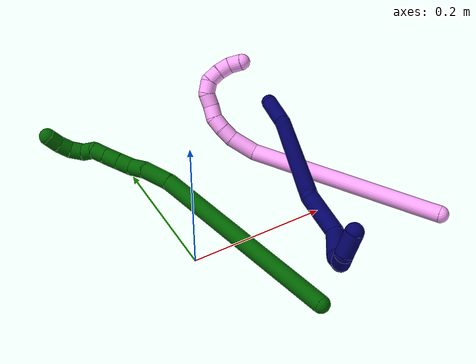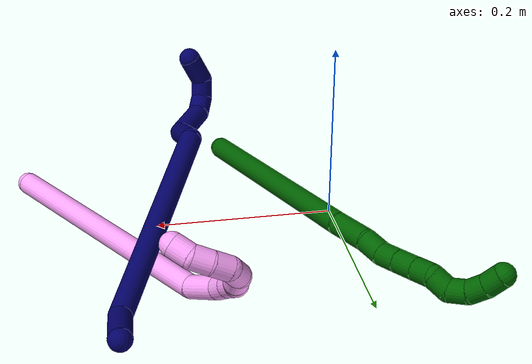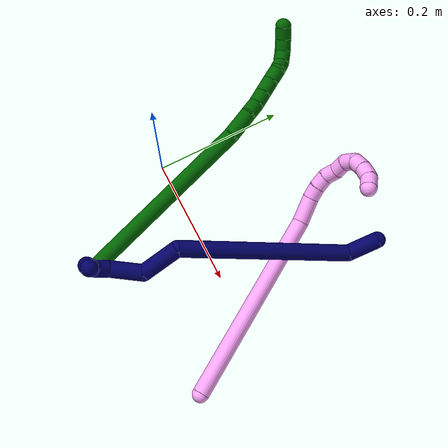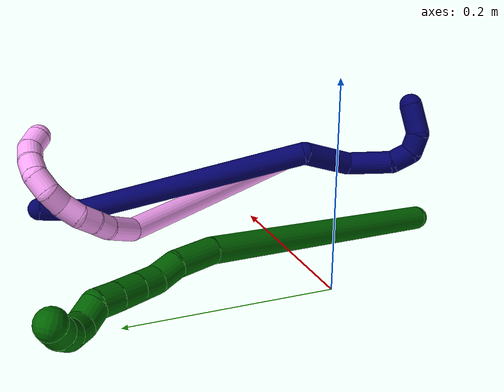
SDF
<sdf version="1.7">
 <world name="default">
  <model name="4">
   <static>0</static>
   <link name="4">
    <collision name="collision-cylinder-e_1_1_4">
     <pose>-0.032239 0.064399 0.130247 -0.459188 -0.218341 0.051222</pose>
     <geometry><cylinder><radius>0.0125</radius><length>0.297663</length></cylinder></geometry>
     <surface>
      <friction><ode><mu>1.16</mu><mu2>1.16</mu2><slip1>0</slip1><slip2>0</slip2></ode></friction>
      <contact><ode><kp>1e+06</kp><kd>1</kd><max_vel>0</max_vel><min_depth>0.001</min_depth></ode></contact>
     </surface>
    </collision>
    <visual name="visual-cylinder-e_1_1_4">
     <pose>-0.032239 0.064399 0.130247 -0.459188 -0.218341 0.051222</pose>
     <geometry><cylinder><radius>0.0125</radius><length>0.297663</length></cylinder></geometry>
     <material><ambient>1 0.65098 0.996078 1</ambient></material>
    </visual>
    <collision name="collision-cylinder-e_2_4_5">
     <pose>-0.065374 0.144023 0.274346 -0.832585 -0.043565 0.019264</pose>
     <geometry><cylinder><radius>0.0125</radius><length>0.041206</length></cylinder></geometry>
     <surface>
      <friction><ode><mu>1.16</mu><mu2>1.16</mu2><slip1>0</slip1><slip2>0</slip2></ode></friction>
      <contact><ode><kp>1e+06</kp><kd>1</kd><max_vel>0</max_vel><min_depth>0.001</min_depth></ode></contact>
     </surface>
    </collision>
    <visual name="visual-cylinder-e_2_4_5">
     <pose>-0.065374 0.144023 0.274346 -0.832585 -0.043565 0.019264</pose>
     <geometry><cylinder><radius>0.0125</radius><length>0.041206</length></cylinder></geometry>
     <material><ambient>1 0.65098 0.996078 1</ambient></material>
    </visual>
    <collision name="collision-cylinder-e_3_5_6">
     <pose>-0.067662 0.167957 0.29292 -1.07395 -0.139439 0.083098</pose>
     <geometry><cylinder><radius>0.0125</radius><length>0.020008</length></cylinder></geometry>
     <surface>
      <friction><ode><mu>1.16</mu><mu2>1.16</mu2><slip1>0</slip1><slip2>0</slip2></ode></friction>
      <contact><ode><kp>1e+06</kp><kd>1</kd><max_vel>0</max_vel><min_depth>0.001</min_depth></ode></contact>
     </surface>
    </collision>
    <visual name="visual-cylinder-e_3_5_6">
     <pose>-0.067662 0.167957 0.29292 -1.07395 -0.139439 0.083098</pose>
     <geometry><cylinder><radius>0.0125</radius><length>0.020008</length></cylinder></geometry>
     <material><ambient>1 0.65098 0.996078 1</ambient></material>
    </visual>
    <collision name="collision-cylinder-e_4_6_7">
     <pose>-0.071878 0.18532 0.302073 -1.0976 -0.282809 0.17365</pose>
     <geometry><cylinder><radius>0.0125</radius><length>0.020248</length></cylinder></geometry>
     <surface>
      <friction><ode><mu>1.16</mu><mu2>1.16</mu2><slip1>0</slip1><slip2>0</slip2></ode></friction>
      <contact><ode><kp>1e+06</kp><kd>1</kd><max_vel>0</max_vel><min_depth>0.001</min_depth></ode></contact>
     </surface>
    </collision>
    <visual name="visual-cylinder-e_4_6_7">
     <pose>-0.071878 0.18532 0.302073 -1.0976 -0.282809 0.17365</pose>
     <geometry><cylinder><radius>0.0125</radius><length>0.020248</length></cylinder></geometry>
     <material><ambient>1 0.65098 0.996078 1</ambient></material>
    </visual>
    <collision name="collision-cylinder-e_5_7_8">
     <pose>-0.079995 0.202563 0.307459 -1.45999 -0.549424 0.494134</pose>
     <geometry><cylinder><radius>0.0125</radius><length>0.020268</length></cylinder></geometry>
     <surface>
      <friction><ode><mu>1.16</mu><mu2>1.16</mu2><slip1>0</slip1><slip2>0</slip2></ode></friction>
      <contact><ode><kp>1e+06</kp><kd>1</kd><max_vel>0</max_vel><min_depth>0.001</min_depth></ode></contact>
     </surface>
    </collision>
    <visual name="visual-cylinder-e_5_7_8">
     <pose>-0.079995 0.202563 0.307459 -1.45999 -0.549424 0.494134</pose>
     <geometry><cylinder><radius>0.0125</radius><length>0.020268</length></cylinder></geometry>
     <material><ambient>1 0.65098 0.996078 1</ambient></material>
    </visual>
    <collision name="collision-cylinder-e_6_8_9">
     <pose>-0.087838 0.220862 0.309201 -1.49001 -0.256187 0.236475</pose>
     <geometry><cylinder><radius>0.0125</radius><length>0.020139</length></cylinder></geometry>
     <surface>
      <friction><ode><mu>1.16</mu><mu2>1.16</mu2><slip1>0</slip1><slip2>0</slip2></ode></friction>
      <contact><ode><kp>1e+06</kp><kd>1</kd><max_vel>0</max_vel><min_depth>0.001</min_depth></ode></contact>
     </surface>
    </collision>
    <visual name="visual-cylinder-e_6_8_9">
     <pose>-0.087838 0.220862 0.309201 -1.49001 -0.256187 0.236475</pose>
     <geometry><cylinder><radius>0.0125</radius><length>0.020139</length></cylinder></geometry>
     <material><ambient>1 0.65098 0.996078 1</ambient></material>
    </visual>
    <collision name="collision-cylinder-e_7_9_10">
     <pose>-0.095752 0.238247 0.306335 -2.01487 -0.562758 0.858339</pose>
     <geometry><cylinder><radius>0.0125</radius><length>0.0201</length></cylinder></geometry>
     <surface>
      <friction><ode><mu>1.16</mu><mu2>1.16</mu2><slip1>0</slip1><slip2>0</slip2></ode></friction>
      <contact><ode><kp>1e+06</kp><kd>1</kd><max_vel>0</max_vel><min_depth>0.001</min_depth></ode></contact>
     </surface>
    </collision>
    <visual name="visual-cylinder-e_7_9_10">
     <pose>-0.095752 0.238247 0.306335 -2.01487 -0.562758 0.858339</pose>
     <geometry><cylinder><radius>0.0125</radius><length>0.0201</length></cylinder></geometry>
     <material><ambient>1 0.65098 0.996078 1</ambient></material>
    </visual>
    <collision name="collision-cylinder-e_8_10_11">
     <pose>-0.107001 0.248888 0.295134 -2.7673 -0.627841 2.08555</pose>
     <geometry><cylinder><radius>0.0125</radius><length>0.020044</length></cylinder></geometry>
     <surface>
      <friction><ode><mu>1.16</mu><mu2>1.16</mu2><slip1>0</slip1><slip2>0</slip2></ode></friction>
      <contact><ode><kp>1e+06</kp><kd>1</kd><max_vel>0</max_vel><min_depth>0.001</min_depth></ode></contact>
     </surface>
    </collision>
    <visual name="visual-cylinder-e_8_10_11">
     <pose>-0.107001 0.248888 0.295134 -2.7673 -0.627841 2.08555</pose>
     <geometry><cylinder><radius>0.0125</radius><length>0.020044</length></cylinder></geometry>
     <material><ambient>1 0.65098 0.996078 1</ambient></material>
    </visual>
    <collision name="collision-cylinder-e_9_11_12">
     <pose>-0.117794 0.253197 0.278877 -2.98854 -0.508051 2.56728</pose>
     <geometry><cylinder><radius>0.0125</radius><length>0.020168</length></cylinder></geometry>
     <surface>
      <friction><ode><mu>1.16</mu><mu2>1.16</mu2><slip1>0</slip1><slip2>0</slip2></ode></friction>
      <contact><ode><kp>1e+06</kp><kd>1</kd><max_vel>0</max_vel><min_depth>0.001</min_depth></ode></contact>
     </surface>
    </collision>
    <visual name="visual-cylinder-e_9_11_12">
     <pose>-0.117794 0.253197 0.278877 -2.98854 -0.508051 2.56728</pose>
     <geometry><cylinder><radius>0.0125</radius><length>0.020168</length></cylinder></geometry>
     <material><ambient>1 0.65098 0.996078 1</ambient></material>
    </visual>
    <collision name="collision-cylinder-e_10_12_2">
     <pose>-0.123408 0.254364 0.260119 3.1241 -0.070423 -2.65496</pose>
     <geometry><cylinder><radius>0.0125</radius><length>0.020155</length></cylinder></geometry>
     <surface>
      <friction><ode><mu>1.16</mu><mu2>1.16</mu2><slip1>0</slip1><slip2>0</slip2></ode></friction>
      <contact><ode><kp>1e+06</kp><kd>1</kd><max_vel>0</max_vel><min_depth>0.001</min_depth></ode></contact>
     </surface>
    </collision>
    <visual name="visual-cylinder-e_10_12_2">
     <pose>-0.123408 0.254364 0.260119 3.1241 -0.070423 -2.65496</pose>
     <geometry><cylinder><radius>0.0125</radius><length>0.020155</length></cylinder></geometry>
     <material><ambient>1 0.65098 0.996078 1</ambient></material>
    </visual>
    <collision name="collision-sphere-2">
     <pose>-0.124117 0.254188 0.250068 0 -0 0</pose>
     <geometry><sphere><radius>0.0125</radius></sphere></geometry>
     <surface>
      <friction><ode><mu>1.16</mu><mu2>1.16</mu2><slip1>0</slip1><slip2>0</slip2></ode></friction>
      <contact><ode><kp>1e+06</kp><kd>1</kd><max_vel>0</max_vel><min_depth>0.001</min_depth></ode></contact>
     </surface>
    </collision>
    <visual name="visual-sphere-2">
     <pose>-0.124117 0.254188 0.250068 0 -0 0</pose>
     <geometry><sphere><radius>0.0125</radius></sphere></geometry>
     <material><ambient>1 0.65098 0.996078 1</ambient></material>
    </visual>
    <collision name="collision-sphere-12">
     <pose>-0.122699 0.25454 0.27017 0 -0 0</pose>
     <geometry><sphere><radius>0.0125</radius></sphere></geometry>
     <surface>
      <friction><ode><mu>1.16</mu><mu2>1.16</mu2><slip1>0</slip1><slip2>0</slip2></ode></friction>
      <contact><ode><kp>1e+06</kp><kd>1</kd><max_vel>0</max_vel><min_depth>0.001</min_depth></ode></contact>
     </surface>
    </collision>
    <visual name="visual-sphere-12">
     <pose>-0.122699 0.25454 0.27017 0 -0 0</pose>
     <geometry><sphere><radius>0.0125</radius></sphere></geometry>
     <material><ambient>1 0.65098 0.996078 1</ambient></material>
    </visual>
    <collision name="collision-sphere-11">
     <pose>-0.112888 0.251854 0.287584 0 -0 0</pose>
     <geometry><sphere><radius>0.0125</radius></sphere></geometry>
     <surface>
      <friction><ode><mu>1.16</mu><mu2>1.16</mu2><slip1>0</slip1><slip2>0</slip2></ode></friction>
      <contact><ode><kp>1e+06</kp><kd>1</kd><max_vel>0</max_vel><min_depth>0.001</min_depth></ode></contact>
     </surface>
    </collision>
    <visual name="visual-sphere-11">
     <pose>-0.112888 0.251854 0.287584 0 -0 0</pose>
     <geometry><sphere><radius>0.0125</radius></sphere></geometry>
     <material><ambient>1 0.65098 0.996078 1</ambient></material>
    </visual>
    <collision name="collision-sphere-10">
     <pose>-0.101114 0.245923 0.302683 0 -0 0</pose>
     <geometry><sphere><radius>0.0125</radius></sphere></geometry>
     <surface>
      <friction><ode><mu>1.16</mu><mu2>1.16</mu2><slip1>0</slip1><slip2>0</slip2></ode></friction>
      <contact><ode><kp>1e+06</kp><kd>1</kd><max_vel>0</max_vel><min_depth>0.001</min_depth></ode></contact>
     </surface>
    </collision>
    <visual name="visual-sphere-10">
     <pose>-0.101114 0.245923 0.302683 0 -0 0</pose>
     <geometry><sphere><radius>0.0125</radius></sphere></geometry>
     <material><ambient>1 0.65098 0.996078 1</ambient></material>
    </visual>
    <collision name="collision-sphere-9">
     <pose>-0.09039 0.230571 0.309987 0 -0 0</pose>
     <geometry><sphere><radius>0.0125</radius></sphere></geometry>
     <surface>
      <friction><ode><mu>1.16</mu><mu2>1.16</mu2><slip1>0</slip1><slip2>0</slip2></ode></friction>
      <contact><ode><kp>1e+06</kp><kd>1</kd><max_vel>0</max_vel><min_depth>0.001</min_depth></ode></contact>
     </surface>
    </collision>
    <visual name="visual-sphere-9">
     <pose>-0.09039 0.230571 0.309987 0 -0 0</pose>
     <geometry><sphere><radius>0.0125</radius></sphere></geometry>
     <material><ambient>1 0.65098 0.996078 1</ambient></material>
    </visual>
    <collision name="collision-sphere-4">
     <pose>-0.064477 0.128798 0.260494 0 -0 0</pose>
     <geometry><sphere><radius>0.0125</radius></sphere></geometry>
     <surface>
      <friction><ode><mu>1.16</mu><mu2>1.16</mu2><slip1>0</slip1><slip2>0</slip2></ode></friction>
      <contact><ode><kp>1e+06</kp><kd>1</kd><max_vel>0</max_vel><min_depth>0.001</min_depth></ode></contact>
     </surface>
    </collision>
    <visual name="visual-sphere-4">
     <pose>-0.064477 0.128798 0.260494 0 -0 0</pose>
     <geometry><sphere><radius>0.0125</radius></sphere></geometry>
     <material><ambient>1 0.65098 0.996078 1</ambient></material>
    </visual>
    <collision name="collision-sphere-1">
     <geometry><sphere><radius>0.0125</radius></sphere></geometry>
     <surface>
      <friction><ode><mu>1.16</mu><mu2>1.16</mu2><slip1>0</slip1><slip2>0</slip2></ode></friction>
      <contact><ode><kp>1e+06</kp><kd>1</kd><max_vel>0</max_vel><min_depth>0.001</min_depth></ode></contact>
     </surface>
    </collision>
    <visual name="visual-sphere-1">
     <geometry><sphere><radius>0.0125</radius></sphere></geometry>
     <material><ambient>1 0.65098 0.996078 1</ambient></material>
    </visual>
    <collision name="collision-sphere-8">
     <pose>-0.085287 0.211153 0.308415 0 -0 0</pose>
     <geometry><sphere><radius>0.0125</radius></sphere></geometry>
     <surface>
      <friction><ode><mu>1.16</mu><mu2>1.16</mu2><slip1>0</slip1><slip2>0</slip2></ode></friction>
      <contact><ode><kp>1e+06</kp><kd>1</kd><max_vel>0</max_vel><min_depth>0.001</min_depth></ode></contact>
     </surface>
    </collision>
    <visual name="visual-sphere-8">
     <pose>-0.085287 0.211153 0.308415 0 -0 0</pose>
     <geometry><sphere><radius>0.0125</radius></sphere></geometry>
     <material><ambient>1 0.65098 0.996078 1</ambient></material>
    </visual>
    <collision name="collision-sphere-5">
     <pose>-0.066272 0.159248 0.288198 0 -0 0</pose>
     <geometry><sphere><radius>0.0125</radius></sphere></geometry>
     <surface>
      <friction><ode><mu>1.16</mu><mu2>1.16</mu2><slip1>0</slip1><slip2>0</slip2></ode></friction>
      <contact><ode><kp>1e+06</kp><kd>1</kd><max_vel>0</max_vel><min_depth>0.001</min_depth></ode></contact>
     </surface>
    </collision>
    <visual name="visual-sphere-5">
     <pose>-0.066272 0.159248 0.288198 0 -0 0</pose>
     <geometry><sphere><radius>0.0125</radius></sphere></geometry>
     <material><ambient>1 0.65098 0.996078 1</ambient></material>
    </visual>
    <collision name="collision-sphere-6">
     <pose>-0.069052 0.176666 0.297642 0 -0 0</pose>
     <geometry><sphere><radius>0.0125</radius></sphere></geometry>
     <surface>
      <friction><ode><mu>1.16</mu><mu2>1.16</mu2><slip1>0</slip1><slip2>0</slip2></ode></friction>
      <contact><ode><kp>1e+06</kp><kd>1</kd><max_vel>0</max_vel><min_depth>0.001</min_depth></ode></contact>
     </surface>
    </collision>
    <visual name="visual-sphere-6">
     <pose>-0.069052 0.176666 0.297642 0 -0 0</pose>
     <geometry><sphere><radius>0.0125</radius></sphere></geometry>
     <material><ambient>1 0.65098 0.996078 1</ambient></material>
    </visual>
    <collision name="collision-sphere-7">
     <pose>-0.074703 0.193973 0.306503 0 -0 0</pose>
     <geometry><sphere><radius>0.0125</radius></sphere></geometry>
     <surface>
      <friction><ode><mu>1.16</mu><mu2>1.16</mu2><slip1>0</slip1><slip2>0</slip2></ode></friction>
      <contact><ode><kp>1e+06</kp><kd>1</kd><max_vel>0</max_vel><min_depth>0.001</min_depth></ode></contact>
     </surface>
    </collision>
    <visual name="visual-sphere-7">
     <pose>-0.074703 0.193973 0.306503 0 -0 0</pose>
     <geometry><sphere><radius>0.0125</radius></sphere></geometry>
     <material><ambient>1 0.65098 0.996078 1</ambient></material>
    </visual>
    <inertial>
     <pose>-0.054844 0.121562 0.194901 0 -0 0</pose>
     <mass>0.5</mass>
     <inertia>
      <ixx>0.002269</ixx>
      <ixy>0</ixy>
      <ixz>0</ixz>
      <iyy>0.002133</iyy>
      <iyz>0</iyz>
      <izz>-0.000466</izz>
     </inertia>
    </inertial>
   </link>
   <pose>0.341151 -0.104781 0.012269 1.99099 -0.183398 -2.35264</pose>
  </model>
  <model name="6">
   <static>0</static>
   <link name="6">
    <collision name="collision-cylinder-e_1_1_4">
     <pose>-0.05369 0.118522 -0.05885 -2.03167 -0.385438 0.609895</pose>
     <geometry><cylinder><radius>0.0125</radius><length>0.28561</length></cylinder></geometry>
     <surface>
      <friction><ode><mu>1.16</mu><mu2>1.16</mu2><slip1>0</slip1><slip2>0</slip2></ode></friction>
      <contact><ode><kp>1e+06</kp><kd>1</kd><max_vel>0</max_vel><min_depth>0.001</min_depth></ode></contact>
     </surface>
    </collision>
    <visual name="visual-cylinder-e_1_1_4">
     <pose>-0.05369 0.118522 -0.05885 -2.03167 -0.385438 0.609895</pose>
     <geometry><cylinder><radius>0.0125</radius><length>0.28561</length></cylinder></geometry>
     <material><ambient>0 0.392157 0.003922 1</ambient></material>
    </visual>
    <collision name="collision-cylinder-e_2_4_5">
     <pose>-0.117159 0.252664 -0.129571 -2.22065 -0.462432 0.886275</pose>
     <geometry><cylinder><radius>0.0125</radius><length>0.043843</length></cylinder></geometry>
     <surface>
      <friction><ode><mu>1.16</mu><mu2>1.16</mu2><slip1>0</slip1><slip2>0</slip2></ode></friction>
      <contact><ode><kp>1e+06</kp><kd>1</kd><max_vel>0</max_vel><min_depth>0.001</min_depth></ode></contact>
     </surface>
    </collision>
    <visual name="visual-cylinder-e_2_4_5">
     <pose>-0.117159 0.252664 -0.129571 -2.22065 -0.462432 0.886275</pose>
     <geometry><cylinder><radius>0.0125</radius><length>0.043843</length></cylinder></geometry>
     <material><ambient>0 0.392157 0.003922 1</ambient></material>
    </visual>
    <collision name="collision-cylinder-e_3_5_6">
     <pose>-0.131154 0.275216 -0.150225 -2.47345 -0.360238 0.966335</pose>
     <geometry><cylinder><radius>0.0125</radius><length>0.023913</length></cylinder></geometry>
     <surface>
      <friction><ode><mu>1.16</mu><mu2>1.16</mu2><slip1>0</slip1><slip2>0</slip2></ode></friction>
      <contact><ode><kp>1e+06</kp><kd>1</kd><max_vel>0</max_vel><min_depth>0.001</min_depth></ode></contact>
     </surface>
    </collision>
    <visual name="visual-cylinder-e_3_5_6">
     <pose>-0.131154 0.275216 -0.150225 -2.47345 -0.360238 0.966335</pose>
     <geometry><cylinder><radius>0.0125</radius><length>0.023913</length></cylinder></geometry>
     <material><ambient>0 0.392157 0.003922 1</ambient></material>
    </visual>
    <collision name="collision-cylinder-e_4_6_7">
     <pose>-0.141291 0.289313 -0.164825 -2.2527 -0.570574 1.104</pose>
     <geometry><cylinder><radius>0.0125</radius><length>0.021933</length></cylinder></geometry>
     <surface>
      <friction><ode><mu>1.16</mu><mu2>1.16</mu2><slip1>0</slip1><slip2>0</slip2></ode></friction>
      <contact><ode><kp>1e+06</kp><kd>1</kd><max_vel>0</max_vel><min_depth>0.001</min_depth></ode></contact>
     </surface>
    </collision>
    <visual name="visual-cylinder-e_4_6_7">
     <pose>-0.141291 0.289313 -0.164825 -2.2527 -0.570574 1.104</pose>
     <geometry><cylinder><radius>0.0125</radius><length>0.021933</length></cylinder></geometry>
     <material><ambient>0 0.392157 0.003922 1</ambient></material>
    </visual>
    <collision name="collision-cylinder-e_5_7_8">
     <pose>-0.15363 0.30417 -0.176858 -2.25051 -0.575429 1.10949</pose>
     <geometry><cylinder><radius>0.0125</radius><length>0.023576</length></cylinder></geometry>
     <surface>
      <friction><ode><mu>1.16</mu><mu2>1.16</mu2><slip1>0</slip1><slip2>0</slip2></ode></friction>
      <contact><ode><kp>1e+06</kp><kd>1</kd><max_vel>0</max_vel><min_depth>0.001</min_depth></ode></contact>
     </surface>
    </collision>
    <visual name="visual-cylinder-e_5_7_8">
     <pose>-0.15363 0.30417 -0.176858 -2.25051 -0.575429 1.10949</pose>
     <geometry><cylinder><radius>0.0125</radius><length>0.023576</length></cylinder></geometry>
     <material><ambient>0 0.392157 0.003922 1</ambient></material>
    </visual>
    <collision name="collision-cylinder-e_6_8_9">
     <pose>-0.165701 0.318976 -0.18836 -2.20971 -0.568056 1.05192</pose>
     <geometry><cylinder><radius>0.0125</radius><length>0.021028</length></cylinder></geometry>
     <surface>
      <friction><ode><mu>1.16</mu><mu2>1.16</mu2><slip1>0</slip1><slip2>0</slip2></ode></friction>
      <contact><ode><kp>1e+06</kp><kd>1</kd><max_vel>0</max_vel><min_depth>0.001</min_depth></ode></contact>
     </surface>
    </collision>
    <visual name="visual-cylinder-e_6_8_9">
     <pose>-0.165701 0.318976 -0.18836 -2.20971 -0.568056 1.05192</pose>
     <geometry><cylinder><radius>0.0125</radius><length>0.021028</length></cylinder></geometry>
     <material><ambient>0 0.392157 0.003922 1</ambient></material>
    </visual>
    <collision name="collision-cylinder-e_7_9_10">
     <pose>-0.174567 0.329297 -0.202595 -2.79762 -0.325539 1.51469</pose>
     <geometry><cylinder><radius>0.0125</radius><length>0.020067</length></cylinder></geometry>
     <surface>
      <friction><ode><mu>1.16</mu><mu2>1.16</mu2><slip1>0</slip1><slip2>0</slip2></ode></friction>
      <contact><ode><kp>1e+06</kp><kd>1</kd><max_vel>0</max_vel><min_depth>0.001</min_depth></ode></contact>
     </surface>
    </collision>
    <visual name="visual-cylinder-e_7_9_10">
     <pose>-0.174567 0.329297 -0.202595 -2.79762 -0.325539 1.51469</pose>
     <geometry><cylinder><radius>0.0125</radius><length>0.020067</length></cylinder></geometry>
     <material><ambient>0 0.392157 0.003922 1</ambient></material>
    </visual>
    <collision name="collision-cylinder-e_8_10_11">
     <pose>-0.185849 0.336117 -0.216234 -2.48495 -0.937989 1.95782</pose>
     <geometry><cylinder><radius>0.0125</radius><length>0.020023</length></cylinder></geometry>
     <surface>
      <friction><ode><mu>1.16</mu><mu2>1.16</mu2><slip1>0</slip1><slip2>0</slip2></ode></friction>
      <contact><ode><kp>1e+06</kp><kd>1</kd><max_vel>0</max_vel><min_depth>0.001</min_depth></ode></contact>
     </surface>
    </collision>
    <visual name="visual-cylinder-e_8_10_11">
     <pose>-0.185849 0.336117 -0.216234 -2.48495 -0.937989 1.95782</pose>
     <geometry><cylinder><radius>0.0125</radius><length>0.020023</length></cylinder></geometry>
     <material><ambient>0 0.392157 0.003922 1</ambient></material>
    </visual>
    <collision name="collision-cylinder-e_9_11_12">
     <pose>-0.203283 0.343215 -0.221441 -1.71811 -1.21105 1.35263</pose>
     <geometry><cylinder><radius>0.0125</radius><length>0.020003</length></cylinder></geometry>
     <surface>
      <friction><ode><mu>1.16</mu><mu2>1.16</mu2><slip1>0</slip1><slip2>0</slip2></ode></friction>
      <contact><ode><kp>1e+06</kp><kd>1</kd><max_vel>0</max_vel><min_depth>0.001</min_depth></ode></contact>
     </surface>
    </collision>
    <visual name="visual-cylinder-e_9_11_12">
     <pose>-0.203283 0.343215 -0.221441 -1.71811 -1.21105 1.35263</pose>
     <geometry><cylinder><radius>0.0125</radius><length>0.020003</length></cylinder></geometry>
     <material><ambient>0 0.392157 0.003922 1</ambient></material>
    </visual>
    <collision name="collision-cylinder-e_10_12_2">
     <pose>-0.221865 0.350201 -0.220304 -1.12984 -1.17309 0.797322</pose>
     <geometry><cylinder><radius>0.0125</radius><length>0.020003</length></cylinder></geometry>
     <surface>
      <friction><ode><mu>1.16</mu><mu2>1.16</mu2><slip1>0</slip1><slip2>0</slip2></ode></friction>
      <contact><ode><kp>1e+06</kp><kd>1</kd><max_vel>0</max_vel><min_depth>0.001</min_depth></ode></contact>
     </surface>
    </collision>
    <visual name="visual-cylinder-e_10_12_2">
     <pose>-0.221865 0.350201 -0.220304 -1.12984 -1.17309 0.797322</pose>
     <geometry><cylinder><radius>0.0125</radius><length>0.020003</length></cylinder></geometry>
     <material><ambient>0 0.392157 0.003922 1</ambient></material>
    </visual>
    <collision name="collision-sphere-2">
     <pose>-0.231086 0.353704 -0.218651 0 -0 0</pose>
     <geometry><sphere><radius>0.0125</radius></sphere></geometry>
     <surface>
      <friction><ode><mu>1.16</mu><mu2>1.16</mu2><slip1>0</slip1><slip2>0</slip2></ode></friction>
      <contact><ode><kp>1e+06</kp><kd>1</kd><max_vel>0</max_vel><min_depth>0.001</min_depth></ode></contact>
     </surface>
    </collision>
    <visual name="visual-sphere-2">
     <pose>-0.231086 0.353704 -0.218651 0 -0 0</pose>
     <geometry><sphere><radius>0.0125</radius></sphere></geometry>
     <material><ambient>0 0.392157 0.003922 1</ambient></material>
    </visual>
    <collision name="collision-sphere-12">
     <pose>-0.212644 0.346698 -0.221957 0 -0 0</pose>
     <geometry><sphere><radius>0.0125</radius></sphere></geometry>
     <surface>
      <friction><ode><mu>1.16</mu><mu2>1.16</mu2><slip1>0</slip1><slip2>0</slip2></ode></friction>
      <contact><ode><kp>1e+06</kp><kd>1</kd><max_vel>0</max_vel><min_depth>0.001</min_depth></ode></contact>
     </surface>
    </collision>
    <visual name="visual-sphere-12">
     <pose>-0.212644 0.346698 -0.221957 0 -0 0</pose>
     <geometry><sphere><radius>0.0125</radius></sphere></geometry>
     <material><ambient>0 0.392157 0.003922 1</ambient></material>
    </visual>
    <collision name="collision-sphere-11">
     <pose>-0.193922 0.339732 -0.220924 0 -0 0</pose>
     <geometry><sphere><radius>0.0125</radius></sphere></geometry>
     <surface>
      <friction><ode><mu>1.16</mu><mu2>1.16</mu2><slip1>0</slip1><slip2>0</slip2></ode></friction>
      <contact><ode><kp>1e+06</kp><kd>1</kd><max_vel>0</max_vel><min_depth>0.001</min_depth></ode></contact>
     </surface>
    </collision>
    <visual name="visual-sphere-11">
     <pose>-0.193922 0.339732 -0.220924 0 -0 0</pose>
     <geometry><sphere><radius>0.0125</radius></sphere></geometry>
     <material><ambient>0 0.392157 0.003922 1</ambient></material>
    </visual>
    <collision name="collision-sphere-10">
     <pose>-0.177775 0.332503 -0.211544 0 -0 0</pose>
     <geometry><sphere><radius>0.0125</radius></sphere></geometry>
     <surface>
      <friction><ode><mu>1.16</mu><mu2>1.16</mu2><slip1>0</slip1><slip2>0</slip2></ode></friction>
      <contact><ode><kp>1e+06</kp><kd>1</kd><max_vel>0</max_vel><min_depth>0.001</min_depth></ode></contact>
     </surface>
    </collision>
    <visual name="visual-sphere-10">
     <pose>-0.177775 0.332503 -0.211544 0 -0 0</pose>
     <geometry><sphere><radius>0.0125</radius></sphere></geometry>
     <material><ambient>0 0.392157 0.003922 1</ambient></material>
    </visual>
    <collision name="collision-sphere-9">
     <pose>-0.171358 0.326091 -0.193645 0 -0 0</pose>
     <geometry><sphere><radius>0.0125</radius></sphere></geometry>
     <surface>
      <friction><ode><mu>1.16</mu><mu2>1.16</mu2><slip1>0</slip1><slip2>0</slip2></ode></friction>
      <contact><ode><kp>1e+06</kp><kd>1</kd><max_vel>0</max_vel><min_depth>0.001</min_depth></ode></contact>
     </surface>
    </collision>
    <visual name="visual-sphere-9">
     <pose>-0.171358 0.326091 -0.193645 0 -0 0</pose>
     <geometry><sphere><radius>0.0125</radius></sphere></geometry>
     <material><ambient>0 0.392157 0.003922 1</ambient></material>
    </visual>
    <collision name="collision-sphere-4">
     <pose>-0.107379 0.237044 -0.1177 0 -0 0</pose>
     <geometry><sphere><radius>0.0125</radius></sphere></geometry>
     <surface>
      <friction><ode><mu>1.16</mu><mu2>1.16</mu2><slip1>0</slip1><slip2>0</slip2></ode></friction>
      <contact><ode><kp>1e+06</kp><kd>1</kd><max_vel>0</max_vel><min_depth>0.001</min_depth></ode></contact>
     </surface>
    </collision>
    <visual name="visual-sphere-4">
     <pose>-0.107379 0.237044 -0.1177 0 -0 0</pose>
     <geometry><sphere><radius>0.0125</radius></sphere></geometry>
     <material><ambient>0 0.392157 0.003922 1</ambient></material>
    </visual>
    <collision name="collision-sphere-1">
     <geometry><sphere><radius>0.0125</radius></sphere></geometry>
     <surface>
      <friction><ode><mu>1.16</mu><mu2>1.16</mu2><slip1>0</slip1><slip2>0</slip2></ode></friction>
      <contact><ode><kp>1e+06</kp><kd>1</kd><max_vel>0</max_vel><min_depth>0.001</min_depth></ode></contact>
     </surface>
    </collision>
    <visual name="visual-sphere-1">
     <geometry><sphere><radius>0.0125</radius></sphere></geometry>
     <material><ambient>0 0.392157 0.003922 1</ambient></material>
    </visual>
    <collision name="collision-sphere-8">
     <pose>-0.160045 0.311862 -0.183075 0 -0 0</pose>
     <geometry><sphere><radius>0.0125</radius></sphere></geometry>
     <surface>
      <friction><ode><mu>1.16</mu><mu2>1.16</mu2><slip1>0</slip1><slip2>0</slip2></ode></friction>
      <contact><ode><kp>1e+06</kp><kd>1</kd><max_vel>0</max_vel><min_depth>0.001</min_depth></ode></contact>
     </surface>
    </collision>
    <visual name="visual-sphere-8">
     <pose>-0.160045 0.311862 -0.183075 0 -0 0</pose>
     <geometry><sphere><radius>0.0125</radius></sphere></geometry>
     <material><ambient>0 0.392157 0.003922 1</ambient></material>
    </visual>
    <collision name="collision-sphere-5">
     <pose>-0.126939 0.268284 -0.141442 0 -0 0</pose>
     <geometry><sphere><radius>0.0125</radius></sphere></geometry>
     <surface>
      <friction><ode><mu>1.16</mu><mu2>1.16</mu2><slip1>0</slip1><slip2>0</slip2></ode></friction>
      <contact><ode><kp>1e+06</kp><kd>1</kd><max_vel>0</max_vel><min_depth>0.001</min_depth></ode></contact>
     </surface>
    </collision>
    <visual name="visual-sphere-5">
     <pose>-0.126939 0.268284 -0.141442 0 -0 0</pose>
     <geometry><sphere><radius>0.0125</radius></sphere></geometry>
     <material><ambient>0 0.392157 0.003922 1</ambient></material>
    </visual>
    <collision name="collision-sphere-6">
     <pose>-0.135368 0.282148 -0.159008 0 -0 0</pose>
     <geometry><sphere><radius>0.0125</radius></sphere></geometry>
     <surface>
      <friction><ode><mu>1.16</mu><mu2>1.16</mu2><slip1>0</slip1><slip2>0</slip2></ode></friction>
      <contact><ode><kp>1e+06</kp><kd>1</kd><max_vel>0</max_vel><min_depth>0.001</min_depth></ode></contact>
     </surface>
    </collision>
    <visual name="visual-sphere-6">
     <pose>-0.135368 0.282148 -0.159008 0 -0 0</pose>
     <geometry><sphere><radius>0.0125</radius></sphere></geometry>
     <material><ambient>0 0.392157 0.003922 1</ambient></material>
    </visual>
    <collision name="collision-sphere-7">
     <pose>-0.147215 0.296479 -0.170642 0 -0 0</pose>
     <geometry><sphere><radius>0.0125</radius></sphere></geometry>
     <surface>
      <friction><ode><mu>1.16</mu><mu2>1.16</mu2><slip1>0</slip1><slip2>0</slip2></ode></friction>
      <contact><ode><kp>1e+06</kp><kd>1</kd><max_vel>0</max_vel><min_depth>0.001</min_depth></ode></contact>
     </surface>
    </collision>
    <visual name="visual-sphere-7">
     <pose>-0.147215 0.296479 -0.170642 0 -0 0</pose>
     <geometry><sphere><radius>0.0125</radius></sphere></geometry>
     <material><ambient>0 0.392157 0.003922 1</ambient></material>
    </visual>
    <inertial>
     <pose>-0.099082 0.197885 -0.110117 0 -0 0</pose>
     <mass>0.5</mass>
     <inertia>
      <ixx>0.002525</ixx>
      <ixy>0</ixy>
      <ixz>0</ixz>
      <iyy>0.000746</iyy>
      <iyz>0</iyz>
      <izz>-0.000905</izz>
     </inertia>
    </inertial>
   </link>
   <pose>0.101241 -0.159439 0.011499 0.382145 0.551034 -0.077123</pose>
  </model>
  <model name="7">
   <static>0</static>
   <link name="7">
    <collision name="collision-cylinder-e_1_1_4">
     <pose>-0.014895 -0.009963 -0.016195 2.59008 -0.664509 -1.76787</pose>
     <geometry><cylinder><radius>0.0125</radius><length>0.048308</length></cylinder></geometry>
     <surface>
      <friction><ode><mu>1.16</mu><mu2>1.16</mu2><slip1>0</slip1><slip2>0</slip2></ode></friction>
      <contact><ode><kp>1e+06</kp><kd>1</kd><max_vel>0</max_vel><min_depth>0.001</min_depth></ode></contact>
     </surface>
    </collision>
    <visual name="visual-cylinder-e_1_1_4">
     <pose>-0.014895 -0.009963 -0.016195 2.59008 -0.664509 -1.76787</pose>
     <geometry><cylinder><radius>0.0125</radius><length>0.048308</length></cylinder></geometry>
     <material><ambient>0.003922 0 0.403922 1</ambient></material>
    </visual>
    <collision name="collision-cylinder-e_2_4_5">
     <pose>-0.138296 -0.011992 -0.106046 -3.03428 -0.971747 2.93889</pose>
     <geometry><cylinder><radius>0.0125</radius><length>0.262766</length></cylinder></geometry>
     <surface>
      <friction><ode><mu>1.16</mu><mu2>1.16</mu2><slip1>0</slip1><slip2>0</slip2></ode></friction>
      <contact><ode><kp>1e+06</kp><kd>1</kd><max_vel>0</max_vel><min_depth>0.001</min_depth></ode></contact>
     </surface>
    </collision>
    <visual name="visual-cylinder-e_2_4_5">
     <pose>-0.138296 -0.011992 -0.106046 -3.03428 -0.971747 2.93889</pose>
     <geometry><cylinder><radius>0.0125</radius><length>0.262766</length></cylinder></geometry>
     <material><ambient>0.003922 0 0.403922 1</ambient></material>
    </visual>
    <collision name="collision-cylinder-e_3_5_6">
     <pose>-0.260539 -0.021967 -0.199785 2.41334 -0.472021 -1.12582</pose>
     <geometry><cylinder><radius>0.0125</radius><length>0.060427</length></cylinder></geometry>
     <surface>
      <friction><ode><mu>1.16</mu><mu2>1.16</mu2><slip1>0</slip1><slip2>0</slip2></ode></friction>
      <contact><ode><kp>1e+06</kp><kd>1</kd><max_vel>0</max_vel><min_depth>0.001</min_depth></ode></contact>
     </surface>
    </collision>
    <visual name="visual-cylinder-e_3_5_6">
     <pose>-0.260539 -0.021967 -0.199785 2.41334 -0.472021 -1.12582</pose>
     <geometry><cylinder><radius>0.0125</radius><length>0.060427</length></cylinder></geometry>
     <material><ambient>0.003922 0 0.403922 1</ambient></material>
    </visual>
    <collision name="collision-cylinder-e_4_6_7">
     <pose>-0.290932 -0.036917 -0.237991 -2.97967 -0.736689 2.72717</pose>
     <geometry><cylinder><radius>0.0125</radius><length>0.049583</length></cylinder></geometry>
     <surface>
      <friction><ode><mu>1.16</mu><mu2>1.16</mu2><slip1>0</slip1><slip2>0</slip2></ode></friction>
      <contact><ode><kp>1e+06</kp><kd>1</kd><max_vel>0</max_vel><min_depth>0.001</min_depth></ode></contact>
     </surface>
    </collision>
    <visual name="visual-cylinder-e_4_6_7">
     <pose>-0.290932 -0.036917 -0.237991 -2.97967 -0.736689 2.72717</pose>
     <geometry><cylinder><radius>0.0125</radius><length>0.049583</length></cylinder></geometry>
     <material><ambient>0.003922 0 0.403922 1</ambient></material>
    </visual>
    <collision name="collision-cylinder-e_5_7_8">
     <pose>-0.318433 -0.032796 -0.260305 -2.87147 -1.18941 2.74506</pose>
     <geometry><cylinder><radius>0.0125</radius><length>0.023369</length></cylinder></geometry>
     <surface>
      <friction><ode><mu>1.16</mu><mu2>1.16</mu2><slip1>0</slip1><slip2>0</slip2></ode></friction>
      <contact><ode><kp>1e+06</kp><kd>1</kd><max_vel>0</max_vel><min_depth>0.001</min_depth></ode></contact>
     </surface>
    </collision>
    <visual name="visual-cylinder-e_5_7_8">
     <pose>-0.318433 -0.032796 -0.260305 -2.87147 -1.18941 2.74506</pose>
     <geometry><cylinder><radius>0.0125</radius><length>0.023369</length></cylinder></geometry>
     <material><ambient>0.003922 0 0.403922 1</ambient></material>
    </visual>
    <collision name="collision-cylinder-e_6_8_9">
     <pose>-0.33902 -0.027844 -0.260528 -0.762619 -1.05774 0.460307</pose>
     <geometry><cylinder><radius>0.0125</radius><length>0.022363</length></cylinder></geometry>
     <surface>
      <friction><ode><mu>1.16</mu><mu2>1.16</mu2><slip1>0</slip1><slip2>0</slip2></ode></friction>
      <contact><ode><kp>1e+06</kp><kd>1</kd><max_vel>0</max_vel><min_depth>0.001</min_depth></ode></contact>
     </surface>
    </collision>
    <visual name="visual-cylinder-e_6_8_9">
     <pose>-0.33902 -0.027844 -0.260528 -0.762619 -1.05774 0.460307</pose>
     <geometry><cylinder><radius>0.0125</radius><length>0.022363</length></cylinder></geometry>
     <material><ambient>0.003922 0 0.403922 1</ambient></material>
    </visual>
    <collision name="collision-cylinder-e_7_9_2">
     <pose>-0.358175 -0.022914 -0.242944 -0.083436 -0.60326 0.025973</pose>
     <geometry><cylinder><radius>0.0125</radius><length>0.033184</length></cylinder></geometry>
     <surface>
      <friction><ode><mu>1.16</mu><mu2>1.16</mu2><slip1>0</slip1><slip2>0</slip2></ode></friction>
      <contact><ode><kp>1e+06</kp><kd>1</kd><max_vel>0</max_vel><min_depth>0.001</min_depth></ode></contact>
     </surface>
    </collision>
    <visual name="visual-cylinder-e_7_9_2">
     <pose>-0.358175 -0.022914 -0.242944 -0.083436 -0.60326 0.025973</pose>
     <geometry><cylinder><radius>0.0125</radius><length>0.033184</length></cylinder></geometry>
     <material><ambient>0.003922 0 0.403922 1</ambient></material>
    </visual>
    <collision name="collision-sphere-2">
     <pose>-0.367588 -0.021775 -0.229328 0 -0 0</pose>
     <geometry><sphere><radius>0.0125</radius></sphere></geometry>
     <surface>
      <friction><ode><mu>1.16</mu><mu2>1.16</mu2><slip1>0</slip1><slip2>0</slip2></ode></friction>
      <contact><ode><kp>1e+06</kp><kd>1</kd><max_vel>0</max_vel><min_depth>0.001</min_depth></ode></contact>
     </surface>
    </collision>
    <visual name="visual-sphere-2">
     <pose>-0.367588 -0.021775 -0.229328 0 -0 0</pose>
     <geometry><sphere><radius>0.0125</radius></sphere></geometry>
     <material><ambient>0.003922 0 0.403922 1</ambient></material>
    </visual>
    <collision name="collision-sphere-9">
     <pose>-0.348762 -0.024053 -0.25656 0 -0 0</pose>
     <geometry><sphere><radius>0.0125</radius></sphere></geometry>
     <surface>
      <friction><ode><mu>1.16</mu><mu2>1.16</mu2><slip1>0</slip1><slip2>0</slip2></ode></friction>
      <contact><ode><kp>1e+06</kp><kd>1</kd><max_vel>0</max_vel><min_depth>0.001</min_depth></ode></contact>
     </surface>
    </collision>
    <visual name="visual-sphere-9">
     <pose>-0.348762 -0.024053 -0.25656 0 -0 0</pose>
     <geometry><sphere><radius>0.0125</radius></sphere></geometry>
     <material><ambient>0.003922 0 0.403922 1</ambient></material>
    </visual>
    <collision name="collision-sphere-4">
     <pose>-0.02979 -0.019926 -0.032391 0 -0 0</pose>
     <geometry><sphere><radius>0.0125</radius></sphere></geometry>
     <surface>
      <friction><ode><mu>1.16</mu><mu2>1.16</mu2><slip1>0</slip1><slip2>0</slip2></ode></friction>
      <contact><ode><kp>1e+06</kp><kd>1</kd><max_vel>0</max_vel><min_depth>0.001</min_depth></ode></contact>
     </surface>
    </collision>
    <visual name="visual-sphere-4">
     <pose>-0.02979 -0.019926 -0.032391 0 -0 0</pose>
     <geometry><sphere><radius>0.0125</radius></sphere></geometry>
     <material><ambient>0.003922 0 0.403922 1</ambient></material>
    </visual>
    <collision name="collision-sphere-1">
     <geometry><sphere><radius>0.0125</radius></sphere></geometry>
     <surface>
      <friction><ode><mu>1.16</mu><mu2>1.16</mu2><slip1>0</slip1><slip2>0</slip2></ode></friction>
      <contact><ode><kp>1e+06</kp><kd>1</kd><max_vel>0</max_vel><min_depth>0.001</min_depth></ode></contact>
     </surface>
    </collision>
    <visual name="visual-sphere-1">
     <geometry><sphere><radius>0.0125</radius></sphere></geometry>
     <material><ambient>0.003922 0 0.403922 1</ambient></material>
    </visual>
    <collision name="collision-sphere-8">
     <pose>-0.329278 -0.031635 -0.264497 0 -0 0</pose>
     <geometry><sphere><radius>0.0125</radius></sphere></geometry>
     <surface>
      <friction><ode><mu>1.16</mu><mu2>1.16</mu2><slip1>0</slip1><slip2>0</slip2></ode></friction>
      <contact><ode><kp>1e+06</kp><kd>1</kd><max_vel>0</max_vel><min_depth>0.001</min_depth></ode></contact>
     </surface>
    </collision>
    <visual name="visual-sphere-8">
     <pose>-0.329278 -0.031635 -0.264497 0 -0 0</pose>
     <geometry><sphere><radius>0.0125</radius></sphere></geometry>
     <material><ambient>0.003922 0 0.403922 1</ambient></material>
    </visual>
    <collision name="collision-sphere-5">
     <pose>-0.246801 -0.004057 -0.179701 0 -0 0</pose>
     <geometry><sphere><radius>0.0125</radius></sphere></geometry>
     <surface>
      <friction><ode><mu>1.16</mu><mu2>1.16</mu2><slip1>0</slip1><slip2>0</slip2></ode></friction>
      <contact><ode><kp>1e+06</kp><kd>1</kd><max_vel>0</max_vel><min_depth>0.001</min_depth></ode></contact>
     </surface>
    </collision>
    <visual name="visual-sphere-5">
     <pose>-0.246801 -0.004057 -0.179701 0 -0 0</pose>
     <geometry><sphere><radius>0.0125</radius></sphere></geometry>
     <material><ambient>0.003922 0 0.403922 1</ambient></material>
    </visual>
    <collision name="collision-sphere-6">
     <pose>-0.274277 -0.039877 -0.219869 0 -0 0</pose>
     <geometry><sphere><radius>0.0125</radius></sphere></geometry>
     <surface>
      <friction><ode><mu>1.16</mu><mu2>1.16</mu2><slip1>0</slip1><slip2>0</slip2></ode></friction>
      <contact><ode><kp>1e+06</kp><kd>1</kd><max_vel>0</max_vel><min_depth>0.001</min_depth></ode></contact>
     </surface>
    </collision>
    <visual name="visual-sphere-6">
     <pose>-0.274277 -0.039877 -0.219869 0 -0 0</pose>
     <geometry><sphere><radius>0.0125</radius></sphere></geometry>
     <material><ambient>0.003922 0 0.403922 1</ambient></material>
    </visual>
    <collision name="collision-sphere-7">
     <pose>-0.307588 -0.033957 -0.256114 0 -0 0</pose>
     <geometry><sphere><radius>0.0125</radius></sphere></geometry>
     <surface>
      <friction><ode><mu>1.16</mu><mu2>1.16</mu2><slip1>0</slip1><slip2>0</slip2></ode></friction>
      <contact><ode><kp>1e+06</kp><kd>1</kd><max_vel>0</max_vel><min_depth>0.001</min_depth></ode></contact>
     </surface>
    </collision>
    <visual name="visual-sphere-7">
     <pose>-0.307588 -0.033957 -0.256114 0 -0 0</pose>
     <geometry><sphere><radius>0.0125</radius></sphere></geometry>
     <material><ambient>0.003922 0 0.403922 1</ambient></material>
    </visual>
    <inertial>
     <pose>-0.188273 -0.017879 -0.144983 0 -0 0</pose>
     <mass>0.5</mass>
     <inertia>
      <ixx>-0.000716</ixx>
      <ixy>0</ixy>
      <ixz>0</ixz>
      <iyy>0.001683</iyy>
      <iyz>0</iyz>
      <izz>0.001192</izz>
     </inertia>
    </inertial>
   </link>
   <pose>0.260472 0.233795 0.018951 0.644514 0.765862 1.56474</pose>
  </model>
 </world>
</sdf>
